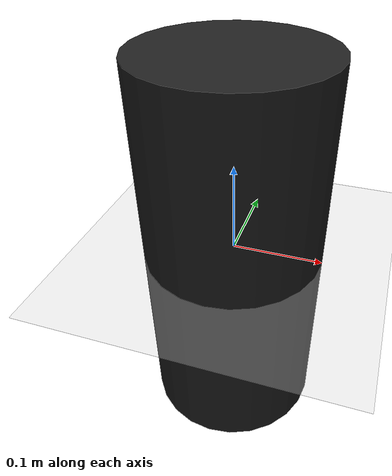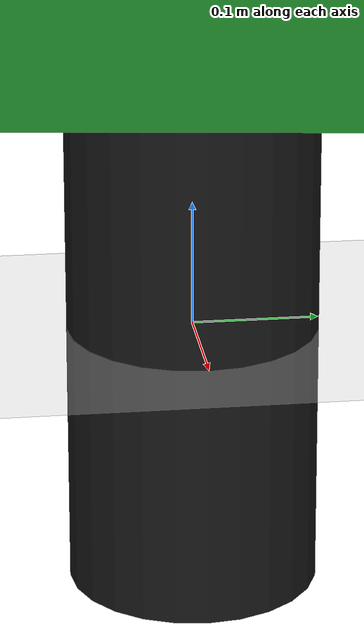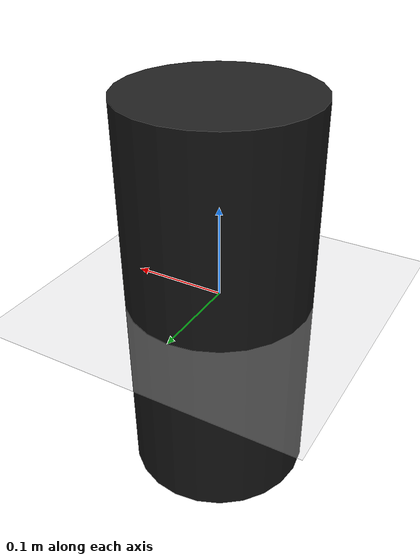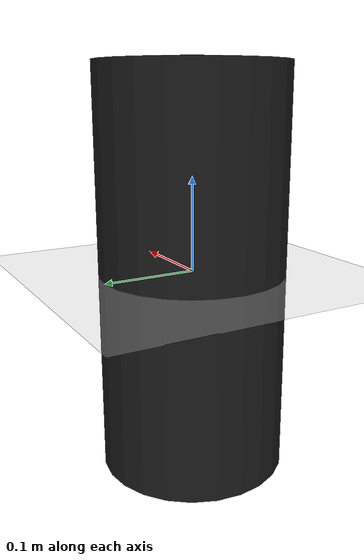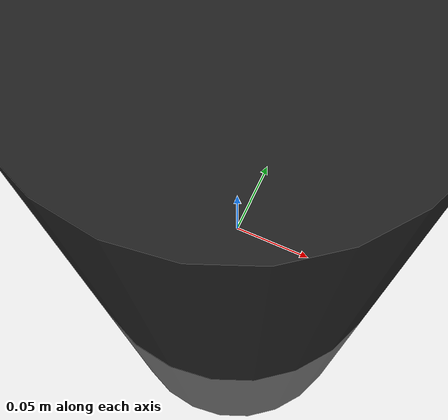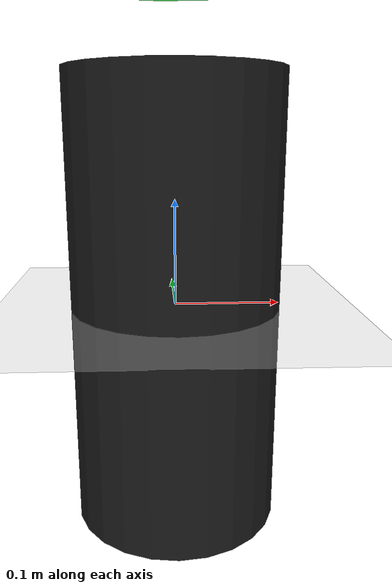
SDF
<sdf version="1.7">
 <world name="default">
  <model name="ground_plane">
   <static>1</static>
   <link name="link">
    <collision name="collision">
     <geometry><plane><normal>0 0 1</normal><size>100 100</size></plane></geometry>
     <surface>
      <contact><collide_bitmask>65535</collide_bitmask></contact>
      <friction><ode><mu>100</mu><mu2>50</mu2></ode></friction>
     </surface>
    </collision>
    <visual name="visual">
     <cast_shadows>0</cast_shadows>
     <geometry><plane><normal>0 0 1</normal><size>100 100</size></plane></geometry>
     <material>
      <script><uri>file://media/materials/scripts/gazebo.material</uri><name>Gazebo/Grey</name></script>
     </material>
    </visual>
   </link>
  </model>
  <light name="sun" type="directional">
   <pose>0 0 10 0 -0 0</pose>
   <diffuse>0.8 0.8 0.8 1</diffuse>
   <specular>0.2 0.2 0.2 1</specular>
   <attenuation>
    <range>1000</range>
    <constant>0.9</constant>
    <linear>0.01</linear>
    <quadratic>0.001</quadratic>
   </attenuation>
   <direction>-0.5 0.1 -0.9</direction>
   <spot><inner_angle>0</inner_angle><outer_angle>0</outer_angle><falloff>0</falloff></spot>
  </light>
  <physics type="ode">
   <max_step_size>0.001</max_step_size>
   <real_time_factor>1</real_time_factor>
   <real_time_update_rate>1000</real_time_update_rate>
  </physics>
  <gravity>0 0 -9.81</gravity>
  <magnetic_field>6e-06 2.3e-05 -4.2e-05</magnetic_field>
  <atmosphere type="adiabatic"/>
  <scene><ambient>0.4 0.4 0.4 1</ambient><background>0.7 0.7 0.7 1</background><shadows>1</shadows></scene>
  <audio><device>default</device></audio>
  <spherical_coordinates>
   <surface_model>EARTH_WGS84</surface_model>
   <latitude_deg>0</latitude_deg>
   <longitude_deg>0</longitude_deg>
   <elevation>0</elevation>
   <heading_deg>0</heading_deg>
  </spherical_coordinates>
  <model name="table_top">
   <pose>0 0 0.45 0 0 0</pose>
   <static>1</static>
   <link name="link">
    <collision name="collision">
     <geometry><cylinder><radius>0.750001</radius><length>0.1</length></cylinder></geometry>
    </collision>
    <visual name="visual">
     <geometry><cylinder><radius>0.750001</radius><length>0.1</length></cylinder></geometry>
     <material>
      <script><name>Gazebo/Green</name><uri>file://media/materials/scripts/gazebo.material</uri></script>
     </material>
    </visual>
    <inertial>
     <inertia><ixx>1</ixx><ixy>0</ixy><ixz>0</ixz><iyy>1</iyy><iyz>0</iyz><izz>1</izz></inertia>
     <mass>1</mass>
    </inertial>
   </link>
  </model>
  <model name="table_leg">
   <static>1</static>
   <link name="link">
    <collision name="collision">
     <geometry><cylinder><radius>0.1</radius><length>0.43</length></cylinder></geometry>
    </collision>
    <visual name="visual">
     <geometry><cylinder><radius>0.1</radius><length>0.43</length></cylinder></geometry>
     <material>
      <script><name>Gazebo/Black</name><uri>file://media/materials/scripts/gazebo.material</uri></script>
     </material>
    </visual>
   </link>
  </model>
 </world>
</sdf>
